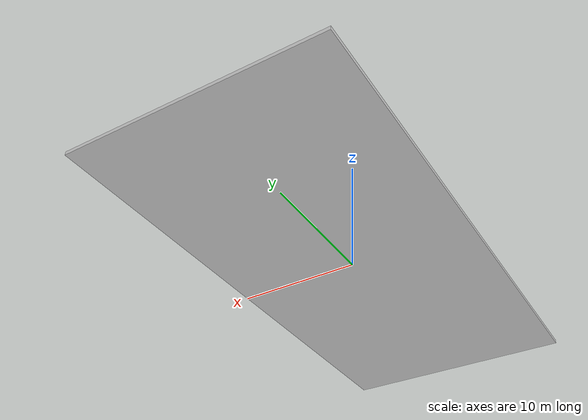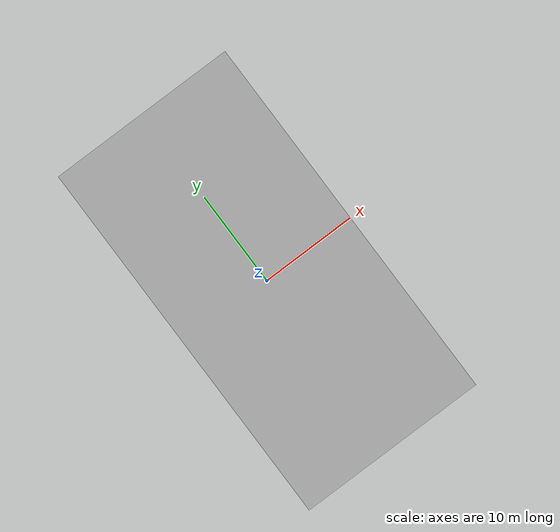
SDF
<?xml version="1.0" ?>
<sdf version="1.5">
  <model name="WarehouseNew">
    <static>true</static>

    <link name="link">
      <collision name="collision">
        <geometry>
          <mesh>
            <uri>model://WarehouseNew/meshes/warehouse_floor_fine.dae</uri>
            <scale>1 1 1</scale>
          </mesh>
        </geometry>
      </collision>
      <visual name="visual">
        <geometry>
          <mesh>
            <uri>model://WarehouseNew/meshes/warehouse_floor_fine.dae</uri>
            <scale>1 1 1</scale>
          </mesh>
        </geometry>
      </visual>
    </link>
  </model>
</sdf>
